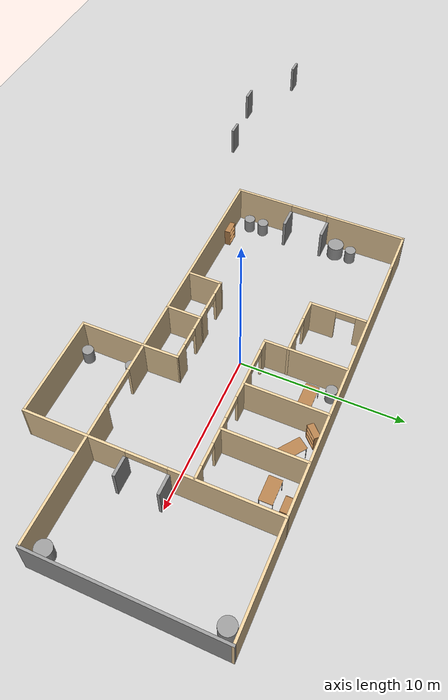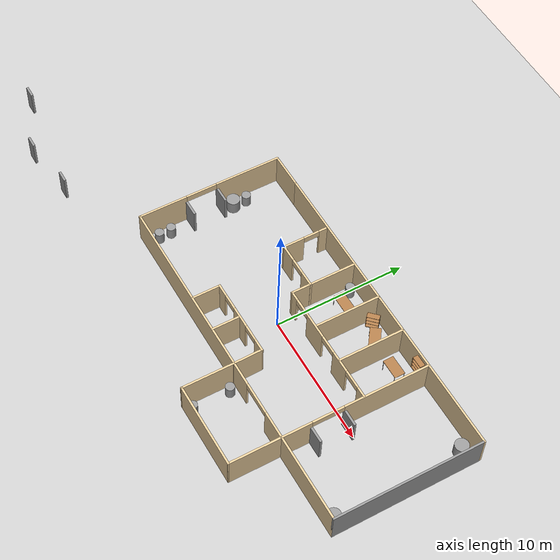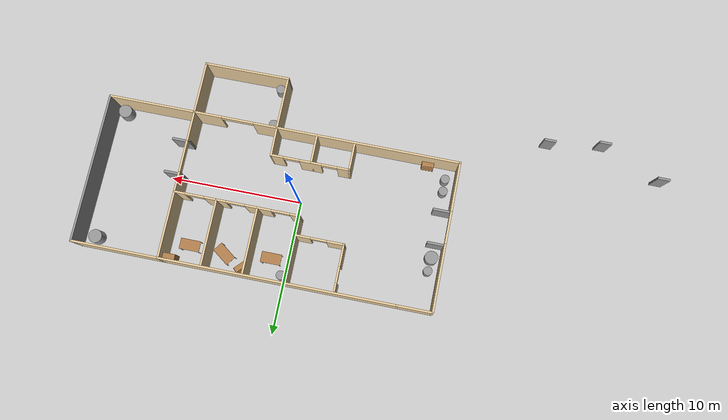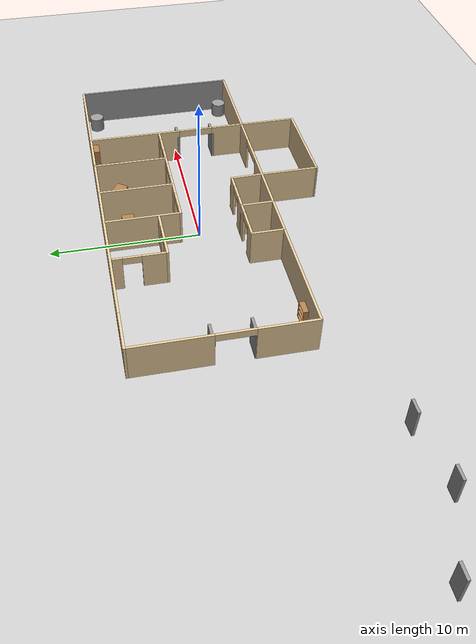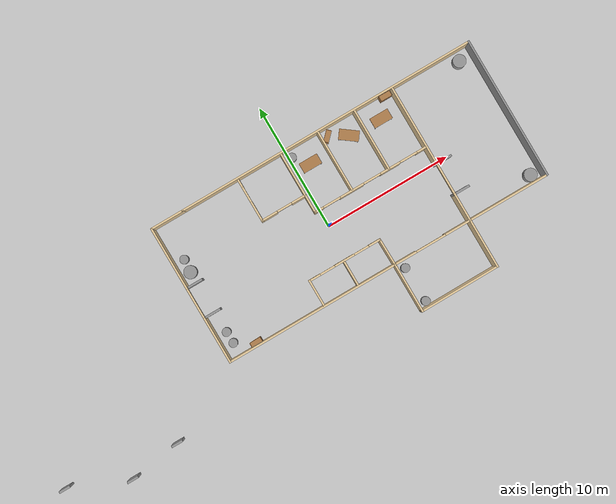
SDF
<sdf version="1.6">
 <world name="default">
  <light name="sun" type="directional">
   <pose>0 0 10 0 -0 0</pose>
   <diffuse>0.8 0.8 0.8 1</diffuse>
   <specular>0.2 0.2 0.2 1</specular>
   <attenuation>
    <range>1000</range>
    <constant>0.9</constant>
    <linear>0.01</linear>
    <quadratic>0.001</quadratic>
   </attenuation>
   <direction>-0.5 0.1 -0.9</direction>
  </light>
  <model name="ground_plane">
   <static>1</static>
   <link name="link">
    <collision name="collision">
     <geometry><plane><normal>0 0 1</normal><size>100 100</size></plane></geometry>
     <surface>
      <contact><collide_bitmask>65535</collide_bitmask></contact>
      <friction><ode><mu>100</mu><mu2>50</mu2></ode></friction>
     </surface>
    </collision>
    <visual name="visual">
     <cast_shadows>0</cast_shadows>
     <geometry><plane><normal>0 0 1</normal><size>100 100</size></plane></geometry>
     <material>
      <script><uri>file://media/materials/scripts/gazebo.material</uri><name>Gazebo/Grey</name></script>
     </material>
    </visual>
   </link>
  </model>
  <gravity>0 0 -9.8</gravity>
  <magnetic_field>6e-06 2.3e-05 -4.2e-05</magnetic_field>
  <atmosphere type="adiabatic"/>
  <physics name="default_physics" default="0" type="ode">
   <max_step_size>0.001</max_step_size>
   <real_time_factor>1</real_time_factor>
   <real_time_update_rate>1000</real_time_update_rate>
  </physics>
  <scene><ambient>0.4 0.4 0.4 1</ambient><background>0.7 0.7 0.7 1</background><shadows>1</shadows></scene>
  <audio><device>default</device></audio>
  <spherical_coordinates>
   <surface_model>EARTH_WGS84</surface_model>
   <latitude_deg>0</latitude_deg>
   <longitude_deg>0</longitude_deg>
   <elevation>0</elevation>
   <heading_deg>0</heading_deg>
  </spherical_coordinates>
  <model name="office-final">
   <pose>2.08602 -1.20157 0 0 -0 0</pose>
   <link name="Door_10">
    <collision name="Door_10_Collision">
     <geometry><box><size>1.35 0.17 2</size></box></geometry>
     <pose>0 0 1 0 -0 0</pose>
    </collision>
    <visual name="Door_10_Visual">
     <pose>0 0 1 0 -0 0</pose>
     <geometry><box><size>1.35 0.17 2</size></box></geometry>
     <material>
      <script><uri>file://media/materials/scripts/gazebo.material</uri><name>Gazebo/Grey</name></script>
     </material>
    </visual>
    <pose>7.39418 1.10816 0 0 -0 0</pose>
   </link>
   <link name="Door_11">
    <collision name="Door_11_Collision">
     <geometry><box><size>1.35 0.17 2</size></box></geometry>
     <pose>0 0 1 0 -0 0</pose>
    </collision>
    <visual name="Door_11_Visual">
     <pose>0 0 1 0 -0 0</pose>
     <geometry><box><size>1.35 0.17 2</size></box></geometry>
     <material>
      <script><uri>file://media/materials/scripts/gazebo.material</uri><name>Gazebo/Grey</name></script>
     </material>
    </visual>
    <pose>7.39418 -1.435 0 0 -0 0</pose>
   </link>
   <link name="Door_12">
    <collision name="Door_12_Collision">
     <geometry><box><size>1.35 0.17 2</size></box></geometry>
     <pose>0 0 1 0 -0 0</pose>
    </collision>
    <visual name="Door_12_Visual">
     <pose>0 0 1 0 -0 0</pose>
     <geometry><box><size>1.35 0.17 2</size></box></geometry>
     <material>
      <script><uri>file://media/materials/scripts/gazebo.material</uri><name>Gazebo/Grey</name></script>
     </material>
    </visual>
    <pose>-12.6196 2.54319 0 0 -0 0</pose>
   </link>
   <link name="Door_13">
    <collision name="Door_13_Collision">
     <geometry><box><size>1.35 0.17 2</size></box></geometry>
     <pose>0 0 1 0 -0 0</pose>
    </collision>
    <visual name="Door_13_Visual">
     <pose>0 0 1 0 -0 0</pose>
     <geometry><box><size>1.35 0.17 2</size></box></geometry>
     <material>
      <script><uri>file://media/materials/scripts/gazebo.material</uri><name>Gazebo/Grey</name></script>
     </material>
    </visual>
    <pose>-12.593 0.044941 0 0 -0 0</pose>
   </link>
   <link name="Door_16">
    <collision name="Door_16_Collision">
     <geometry><box><size>0.9 0.17 2</size></box></geometry>
     <pose>0 0 1 0 -0 0</pose>
    </collision>
    <visual name="Door_16_Visual">
     <pose>0 0 1 0 -0 0</pose>
     <geometry><box><size>0.9 0.17 2</size></box></geometry>
     <material>
      <script><uri>file://media/materials/scripts/gazebo.material</uri><name>Gazebo/Grey</name></script>
     </material>
    </visual>
    <pose>-23.6184 -7.36039 0 0 -0 0</pose>
   </link>
   <link name="Door_17">
    <collision name="Door_17_Collision">
     <geometry><box><size>0.9 0.17 2</size></box></geometry>
     <pose>0 0 1 0 -0 0</pose>
    </collision>
    <visual name="Door_17_Visual">
     <pose>0 0 1 0 -0 0</pose>
     <geometry><box><size>0.9 0.17 2</size></box></geometry>
     <material>
      <script><uri>file://media/materials/scripts/gazebo.material</uri><name>Gazebo/Grey</name></script>
     </material>
    </visual>
    <pose>-19.5486 -6.74859 0 0 -0 0</pose>
   </link>
   <link name="Door_7">
    <collision name="Door_7_Collision">
     <geometry><box><size>0.9 0.17 2</size></box></geometry>
     <pose>0 0 1 0 -0 0</pose>
    </collision>
    <visual name="Door_7_Visual">
     <pose>0 0 1 0 -0 0</pose>
     <geometry><box><size>0.9 0.17 2</size></box></geometry>
     <material>
      <script><uri>file://media/materials/scripts/gazebo.material</uri><name>Gazebo/Grey</name></script>
     </material>
    </visual>
    <pose>-28.2055 -5.4631 0 0 -0 0</pose>
   </link>
   <link name="Wall_0">
    <collision name="Wall_0_Collision">
     <geometry><box><size>11.25 0.15 2.5</size></box></geometry>
     <pose>0 0 1.25 0 -0 0</pose>
    </collision>
    <visual name="Wall_0_Visual">
     <pose>0 0 1.25 0 -0 0</pose>
     <geometry><box><size>11.25 0.15 2.5</size></box></geometry>
     <material>
      <script><uri>file://media/materials/scripts/gazebo.material</uri><name>Gazebo/Grey</name></script>
      <ambient>1 1 1 1</ambient>
     </material>
     <meta><layer>0</layer></meta>
    </visual>
    <pose>13.225 1.94023 0 0 -0 1.5708</pose>
   </link>
   <link name="Wall_1">
    <collision name="Wall_1_Collision">
     <geometry><box><size>24 0.15 2.5</size></box></geometry>
     <pose>0 0 1.25 0 -0 0</pose>
    </collision>
    <visual name="Wall_1_Visual">
     <pose>0 0 1.25 0 -0 0</pose>
     <geometry><box><size>24 0.15 2.5</size></box></geometry>
     <material>
      <script><uri>file://media/materials/scripts/gazebo.material</uri><name>Gazebo/Grey</name></script>
      <ambient>0.921569 0.807843 0.615686 1</ambient>
     </material>
     <meta><layer>0</layer></meta>
    </visual>
    <pose>1.3 7.49023 0 0 -0 3.14159</pose>
   </link>
   <link name="Wall_12">
    <collision name="Wall_12_Collision">
     <geometry><box><size>5 0.15 2.5</size></box></geometry>
     <pose>0 0 1.25 0 -0 0</pose>
    </collision>
    <visual name="Wall_12_Visual">
     <pose>0 0 1.25 0 -0 0</pose>
     <geometry><box><size>5 0.15 2.5</size></box></geometry>
     <material>
      <script><uri>file://media/materials/scripts/gazebo.material</uri><name>Gazebo/Grey</name></script>
      <ambient>0.921569 0.807843 0.615686 1</ambient>
     </material>
     <meta><layer>0</layer></meta>
    </visual>
    <pose>-2.48513 4.96387 0 0 -0 1.5708</pose>
   </link>
   <link name="Wall_14">
    <collision name="Wall_14_Collision">
     <geometry><box><size>2.25 0.15 2.5</size></box></geometry>
     <pose>0 0 1.25 0 -0 0</pose>
    </collision>
    <visual name="Wall_14_Visual">
     <pose>0 0 1.25 0 -0 0</pose>
     <geometry><box><size>2.25 0.15 2.5</size></box></geometry>
     <material>
      <script><uri>file://media/materials/scripts/gazebo.material</uri><name>Gazebo/Grey</name></script>
      <ambient>0.921569 0.807843 0.615686 1</ambient>
     </material>
     <meta><layer>0</layer></meta>
    </visual>
    <pose>-5.35061 -2.55476 0 0 -0 1.5708</pose>
   </link>
   <link name="Wall_15">
    <pose>-2.42561 -1.50476 0 0 -0 0</pose>
    <visual name="Wall_15_Visual_0">
     <pose>-2.51281 0 1.25 0 -0 0</pose>
     <geometry><box><size>0.974378 0.15 2.5</size></box></geometry>
     <material>
      <script><uri>file://media/materials/scripts/gazebo.material</uri><name>Gazebo/Grey</name></script>
      <ambient>0.921569 0.807843 0.615686 1</ambient>
     </material>
     <meta><layer>0</layer></meta>
    </visual>
    <collision name="Wall_15_Collision_0">
     <geometry><box><size>0.974378 0.15 2.5</size></box></geometry>
     <pose>-2.51281 0 1.25 0 -0 0</pose>
    </collision>
    <visual name="Wall_15_Visual_1">
     <pose>-0.009677 0 1.25 0 -0 0</pose>
     <geometry><box><size>1.63189 0.15 2.5</size></box></geometry>
     <material>
      <script><uri>file://media/materials/scripts/gazebo.material</uri><name>Gazebo/Grey</name></script>
      <ambient>0.921569 0.807843 0.615686 1</ambient>
     </material>
     <meta><layer>0</layer></meta>
    </visual>
    <collision name="Wall_15_Collision_1">
     <geometry><box><size>1.63189 0.15 2.5</size></box></geometry>
     <pose>-0.009677 0 1.25 0 -0 0</pose>
    </collision>
    <visual name="Wall_15_Visual_2">
     <pose>2.50313 0 1.25 0 -0 0</pose>
     <geometry><box><size>0.993732 0.15 2.5</size></box></geometry>
     <material>
      <script><uri>file://media/materials/scripts/gazebo.material</uri><name>Gazebo/Grey</name></script>
      <ambient>0.921569 0.807843 0.615686 1</ambient>
     </material>
     <meta><layer>0</layer></meta>
    </visual>
    <collision name="Wall_15_Collision_2">
     <geometry><box><size>0.993732 0.15 2.5</size></box></geometry>
     <pose>2.50313 0 1.25 0 -0 0</pose>
    </collision>
    <visual name="Wall_15_Visual_3">
     <pose>-1.42562 0 2.25 0 -0 0</pose>
     <geometry><box><size>1.2 0.15 0.5</size></box></geometry>
     <material>
      <script><uri>file://media/materials/scripts/gazebo.material</uri><name>Gazebo/Grey</name></script>
      <ambient>0.921569 0.807843 0.615686 1</ambient>
     </material>
     <meta><layer>0</layer></meta>
    </visual>
    <collision name="Wall_15_Collision_3">
     <geometry><box><size>1.2 0.15 0.5</size></box></geometry>
     <pose>-1.42562 0 2.25 0 -0 0</pose>
    </collision>
    <visual name="Wall_15_Visual_4">
     <pose>1.40627 0 2.25 0 -0 0</pose>
     <geometry><box><size>1.2 0.15 0.5</size></box></geometry>
     <material>
      <script><uri>file://media/materials/scripts/gazebo.material</uri><name>Gazebo/Grey</name></script>
      <ambient>0.921569 0.807843 0.615686 1</ambient>
     </material>
     <meta><layer>0</layer></meta>
    </visual>
    <collision name="Wall_15_Collision_4">
     <geometry><box><size>1.2 0.15 0.5</size></box></geometry>
     <pose>1.40627 0 2.25 0 -0 0</pose>
    </collision>
   </link>
   <link name="Wall_16">
    <collision name="Wall_16_Collision">
     <geometry><box><size>2.2954 0.15 2.5</size></box></geometry>
     <pose>0 0 1.25 0 -0 0</pose>
    </collision>
    <visual name="Wall_16_Visual">
     <pose>0 0 1.25 0 -0 0</pose>
     <geometry><box><size>2.2954 0.15 2.5</size></box></geometry>
     <material>
      <script><uri>file://media/materials/scripts/gazebo.material</uri><name>Gazebo/Grey</name></script>
      <ambient>0.921569 0.807843 0.615686 1</ambient>
     </material>
     <meta><layer>0</layer></meta>
    </visual>
    <pose>0.516727 -2.57732 0 0 -0 -1.55463</pose>
   </link>
   <link name="Wall_19">
    <collision name="Wall_19_Collision">
     <geometry><box><size>2.25 0.15 2.5</size></box></geometry>
     <pose>0 0 1.25 0 -0 0</pose>
    </collision>
    <visual name="Wall_19_Visual">
     <pose>0 0 1.25 0 -0 0</pose>
     <geometry><box><size>2.25 0.15 2.5</size></box></geometry>
     <material>
      <script><uri>file://media/materials/scripts/gazebo.material</uri><name>Gazebo/Grey</name></script>
      <ambient>0.921569 0.807843 0.615686 1</ambient>
     </material>
     <meta><layer>0</layer></meta>
    </visual>
    <pose>-2.50061 -2.55476 0 0 -0 -1.5708</pose>
   </link>
   <link name="Wall_2">
    <collision name="Wall_2_Collision">
     <geometry><box><size>2.75 0.15 2.5</size></box></geometry>
     <pose>0 0 1.25 0 -0 0</pose>
    </collision>
    <visual name="Wall_2_Visual">
     <pose>0 0 1.25 0 -0 0</pose>
     <geometry><box><size>2.75 0.15 2.5</size></box></geometry>
     <material>
      <script><uri>file://media/materials/scripts/gazebo.material</uri><name>Gazebo/Grey</name></script>
      <ambient>0.921569 0.807843 0.615686 1</ambient>
     </material>
     <meta><layer>0</layer></meta>
    </visual>
    <pose>-11.925 7.49023 0 0 -0 3.14159</pose>
   </link>
   <link name="Wall_21">
    <collision name="Wall_21_Collision">
     <geometry><box><size>5 0.15 2.5</size></box></geometry>
     <pose>0 0 1.25 0 -0 0</pose>
    </collision>
    <visual name="Wall_21_Visual">
     <pose>0 0 1.25 0 -0 0</pose>
     <geometry><box><size>5 0.15 2.5</size></box></geometry>
     <material>
      <script><uri>file://media/materials/scripts/gazebo.material</uri><name>Gazebo/Grey</name></script>
      <ambient>0.921569 0.807843 0.615686 1</ambient>
     </material>
     <meta><layer>0</layer></meta>
    </visual>
    <pose>0.61017 5.06244 0 0 -0 -1.5708</pose>
   </link>
   <link name="Wall_24">
    <collision name="Wall_24_Collision">
     <geometry><box><size>5 0.15 2.5</size></box></geometry>
     <pose>0 0 1.25 0 -0 0</pose>
    </collision>
    <visual name="Wall_24_Visual">
     <pose>0 0 1.25 0 -0 0</pose>
     <geometry><box><size>5 0.15 2.5</size></box></geometry>
     <material>
      <script><uri>file://media/materials/scripts/gazebo.material</uri><name>Gazebo/Grey</name></script>
      <ambient>0.921569 0.807843 0.615686 1</ambient>
     </material>
     <meta><layer>0</layer></meta>
    </visual>
    <pose>3.65272 5.02706 0 0 -0 -1.5708</pose>
   </link>
   <link name="Wall_26">
    <collision name="Wall_26_Collision">
     <geometry><box><size>3.99038 0.15 2.5</size></box></geometry>
     <pose>0 0 1.25 0 -0 0</pose>
    </collision>
    <visual name="Wall_26_Visual">
     <pose>0 0 1.25 0 -0 0</pose>
     <geometry><box><size>3.99038 0.15 2.5</size></box></geometry>
     <material>
      <script><uri>file://media/materials/scripts/gazebo.material</uri><name>Gazebo/Grey</name></script>
      <ambient>0.921569 0.807843 0.615686 1</ambient>
     </material>
     <meta><layer>0</layer></meta>
    </visual>
    <pose>0.534066 -5.56987 0 0 -0 -1.5708</pose>
   </link>
   <link name="Wall_3">
    <pose>-13.225 1.94023 0 0 -0 -1.5708</pose>
    <visual name="Wall_3_Visual_0">
     <pose>-3.07666 0 1.25 0 -0 0</pose>
     <geometry><box><size>5.09669 0.15 2.5</size></box></geometry>
     <material>
      <script><uri>file://media/materials/scripts/gazebo.material</uri><name>Gazebo/Grey</name></script>
      <ambient>0.921569 0.807843 0.615686 1</ambient>
     </material>
     <meta><layer>0</layer></meta>
    </visual>
    <collision name="Wall_3_Collision_0">
     <geometry><box><size>5.09669 0.15 2.5</size></box></geometry>
     <pose>-3.07666 0 1.25 0 -0 0</pose>
    </collision>
    <visual name="Wall_3_Visual_1">
     <pose>3.74834 0 1.25 0 -0 0</pose>
     <geometry><box><size>3.75331 0.15 2.5</size></box></geometry>
     <material>
      <script><uri>file://media/materials/scripts/gazebo.material</uri><name>Gazebo/Grey</name></script>
      <ambient>0.921569 0.807843 0.615686 1</ambient>
     </material>
     <meta><layer>0</layer></meta>
    </visual>
    <collision name="Wall_3_Collision_1">
     <geometry><box><size>3.75331 0.15 2.5</size></box></geometry>
     <pose>3.74834 0 1.25 0 -0 0</pose>
    </collision>
    <visual name="Wall_3_Visual_2">
     <pose>0.671688 0 2.25 0 -0 0</pose>
     <geometry><box><size>2.4 0.15 0.5</size></box></geometry>
     <material>
      <script><uri>file://media/materials/scripts/gazebo.material</uri><name>Gazebo/Grey</name></script>
      <ambient>0.921569 0.807843 0.615686 1</ambient>
     </material>
     <meta><layer>0</layer></meta>
    </visual>
    <collision name="Wall_3_Collision_2">
     <geometry><box><size>2.4 0.15 0.5</size></box></geometry>
     <pose>0.671688 0 2.25 0 -0 0</pose>
    </collision>
   </link>
   <link name="Wall_35">
    <collision name="Wall_35_Collision">
     <geometry><box><size>4 0.15 2.5</size></box></geometry>
     <pose>0 0 1.25 0 -0 0</pose>
    </collision>
    <visual name="Wall_35_Visual">
     <pose>0 0 1.25 0 -0 0</pose>
     <geometry><box><size>4 0.15 2.5</size></box></geometry>
     <material>
      <script><uri>file://media/materials/scripts/gazebo.material</uri><name>Gazebo/Grey</name></script>
      <ambient>0.921569 0.807843 0.615686 1</ambient>
     </material>
     <meta><layer>0</layer></meta>
    </visual>
    <pose>6.80105 -5.53477 0 0 -0 -1.5708</pose>
   </link>
   <link name="Wall_37">
    <collision name="Wall_37_Collision">
     <geometry><box><size>6.41706 0.15 2.5</size></box></geometry>
     <pose>0 0 1.25 0 -0 0</pose>
    </collision>
    <visual name="Wall_37_Visual">
     <pose>0 0 1.25 0 -0 0</pose>
     <geometry><box><size>6.41706 0.15 2.5</size></box></geometry>
     <material>
      <script><uri>file://media/materials/scripts/gazebo.material</uri><name>Gazebo/Grey</name></script>
      <ambient>0.921569 0.807843 0.615686 1</ambient>
     </material>
     <meta><layer>0</layer></meta>
    </visual>
    <pose>3.66756 -7.47482 0 0 -0 0.004804</pose>
   </link>
   <link name="Wall_39">
    <pose>-4.27574 3.96305 0 0 -0 3.14159</pose>
    <visual name="Wall_39_Visual_0">
     <pose>-1.26771 0 1.25 0 -0 0</pose>
     <geometry><box><size>1.21459 0.15 2.5</size></box></geometry>
     <material>
      <script><uri>file://media/materials/scripts/gazebo.material</uri><name>Gazebo/Grey</name></script>
      <ambient>0.921569 0.807843 0.615686 1</ambient>
     </material>
     <meta><layer>0</layer></meta>
    </visual>
    <collision name="Wall_39_Collision_0">
     <geometry><box><size>1.21459 0.15 2.5</size></box></geometry>
     <pose>-1.26771 0 1.25 0 -0 0</pose>
    </collision>
    <visual name="Wall_39_Visual_1">
     <pose>1.2073 0 1.25 0 -0 0</pose>
     <geometry><box><size>1.33541 0.15 2.5</size></box></geometry>
     <material>
      <script><uri>file://media/materials/scripts/gazebo.material</uri><name>Gazebo/Grey</name></script>
      <ambient>0.921569 0.807843 0.615686 1</ambient>
     </material>
     <meta><layer>0</layer></meta>
    </visual>
    <collision name="Wall_39_Collision_1">
     <geometry><box><size>1.33541 0.15 2.5</size></box></geometry>
     <pose>1.2073 0 1.25 0 -0 0</pose>
    </collision>
    <visual name="Wall_39_Visual_2">
     <pose>-0.06041 0 2.25 0 -0 0</pose>
     <geometry><box><size>1.2 0.15 0.5</size></box></geometry>
     <material>
      <script><uri>file://media/materials/scripts/gazebo.material</uri><name>Gazebo/Grey</name></script>
      <ambient>0.921569 0.807843 0.615686 1</ambient>
     </material>
     <meta><layer>0</layer></meta>
    </visual>
    <collision name="Wall_39_Collision_2">
     <geometry><box><size>1.2 0.15 0.5</size></box></geometry>
     <pose>-0.06041 0 2.25 0 -0 0</pose>
    </collision>
   </link>
   <link name="Wall_4">
    <pose>-0 -3.60977 0 0 -0 0</pose>
    <visual name="Wall_4_Visual_0">
     <pose>-5.47979 0 1.25 0 -0 0</pose>
     <geometry><box><size>15.6404 0.15 2.5</size></box></geometry>
     <material>
      <script><uri>file://media/materials/scripts/gazebo.material</uri><name>Gazebo/Grey</name></script>
      <ambient>0.921569 0.807843 0.615686 1</ambient>
     </material>
     <meta><layer>0</layer></meta>
    </visual>
    <collision name="Wall_4_Collision_0">
     <geometry><box><size>15.6404 0.15 2.5</size></box></geometry>
     <pose>-5.47979 0 1.25 0 -0 0</pose>
    </collision>
    <visual name="Wall_4_Visual_1">
     <pose>9.02021 0 1.25 0 -0 0</pose>
     <geometry><box><size>8.55959 0.15 2.5</size></box></geometry>
     <material>
      <script><uri>file://media/materials/scripts/gazebo.material</uri><name>Gazebo/Grey</name></script>
      <ambient>0.921569 0.807843 0.615686 1</ambient>
     </material>
     <meta><layer>0</layer></meta>
    </visual>
    <collision name="Wall_4_Collision_1">
     <geometry><box><size>8.55959 0.15 2.5</size></box></geometry>
     <pose>9.02021 0 1.25 0 -0 0</pose>
    </collision>
    <visual name="Wall_4_Visual_2">
     <pose>3.54041 0 2.25 0 -0 0</pose>
     <geometry><box><size>2.4 0.15 0.5</size></box></geometry>
     <material>
      <script><uri>file://media/materials/scripts/gazebo.material</uri><name>Gazebo/Grey</name></script>
      <ambient>0.921569 0.807843 0.615686 1</ambient>
     </material>
     <meta><layer>0</layer></meta>
    </visual>
    <collision name="Wall_4_Collision_2">
     <geometry><box><size>2.4 0.15 0.5</size></box></geometry>
     <pose>3.54041 0 2.25 0 -0 0</pose>
    </collision>
   </link>
   <link name="Wall_40">
    <pose>-6.07574 5.63805 0 0 -0 1.5708</pose>
    <visual name="Wall_40_Visual_0">
     <pose>-0.9202 0 1.25 0 -0 0</pose>
     <geometry><box><size>1.6596 0.15 2.5</size></box></geometry>
     <material>
      <script><uri>file://media/materials/scripts/gazebo.material</uri><name>Gazebo/Grey</name></script>
      <ambient>0.921569 0.807843 0.615686 1</ambient>
     </material>
     <meta><layer>0</layer></meta>
    </visual>
    <collision name="Wall_40_Collision_0">
     <geometry><box><size>1.6596 0.15 2.5</size></box></geometry>
     <pose>-0.9202 0 1.25 0 -0 0</pose>
    </collision>
    <visual name="Wall_40_Visual_1">
     <pose>1.4298 0 1.25 0 -0 0</pose>
     <geometry><box><size>0.640399 0.15 2.5</size></box></geometry>
     <material>
      <script><uri>file://media/materials/scripts/gazebo.material</uri><name>Gazebo/Grey</name></script>
      <ambient>0.921569 0.807843 0.615686 1</ambient>
     </material>
     <meta><layer>0</layer></meta>
    </visual>
    <collision name="Wall_40_Collision_1">
     <geometry><box><size>0.640399 0.15 2.5</size></box></geometry>
     <pose>1.4298 0 1.25 0 -0 0</pose>
    </collision>
    <visual name="Wall_40_Visual_2">
     <pose>0.509601 0 2.25 0 -0 0</pose>
     <geometry><box><size>1.2 0.15 0.5</size></box></geometry>
     <material>
      <script><uri>file://media/materials/scripts/gazebo.material</uri><name>Gazebo/Grey</name></script>
      <ambient>0.921569 0.807843 0.615686 1</ambient>
     </material>
     <meta><layer>0</layer></meta>
    </visual>
    <collision name="Wall_40_Collision_2">
     <geometry><box><size>1.2 0.15 0.5</size></box></geometry>
     <pose>0.509601 0 2.25 0 -0 0</pose>
    </collision>
   </link>
   <link name="Wall_5">
    <collision name="Wall_5_Collision">
     <geometry><box><size>11.25 0.15 2.5</size></box></geometry>
     <pose>0 0 1.25 0 -0 0</pose>
    </collision>
    <visual name="Wall_5_Visual">
     <pose>0 0 1.25 0 -0 0</pose>
     <geometry><box><size>11.25 0.15 2.5</size></box></geometry>
     <material>
      <script><uri>file://media/materials/scripts/gazebo.material</uri><name>Gazebo/Grey</name></script>
      <ambient>0.921569 0.807843 0.615686 1</ambient>
     </material>
     <meta><layer>0</layer></meta>
    </visual>
    <pose>13.225 1.94023 0 0 -0 1.5708</pose>
   </link>
   <link name="Wall_7">
    <pose>6.80105 1.94023 0 0 -0 1.5708</pose>
    <visual name="Wall_7_Visual_0">
     <pose>-4.46433 0 1.25 0 -0 0</pose>
     <geometry><box><size>2.32135 0.15 2.5</size></box></geometry>
     <material>
      <script><uri>file://media/materials/scripts/gazebo.material</uri><name>Gazebo/Grey</name></script>
      <ambient>0.921569 0.807843 0.615686 1</ambient>
     </material>
     <meta><layer>0</layer></meta>
    </visual>
    <collision name="Wall_7_Collision_0">
     <geometry><box><size>2.32135 0.15 2.5</size></box></geometry>
     <pose>-4.46433 0 1.25 0 -0 0</pose>
    </collision>
    <visual name="Wall_7_Visual_1">
     <pose>2.36067 0 1.25 0 -0 0</pose>
     <geometry><box><size>6.52865 0.15 2.5</size></box></geometry>
     <material>
      <script><uri>file://media/materials/scripts/gazebo.material</uri><name>Gazebo/Grey</name></script>
      <ambient>0.921569 0.807843 0.615686 1</ambient>
     </material>
     <meta><layer>0</layer></meta>
    </visual>
    <collision name="Wall_7_Collision_1">
     <geometry><box><size>6.52865 0.15 2.5</size></box></geometry>
     <pose>2.36067 0 1.25 0 -0 0</pose>
    </collision>
    <visual name="Wall_7_Visual_2">
     <pose>-2.10365 0 2.25 0 -0 0</pose>
     <geometry><box><size>2.4 0.15 0.5</size></box></geometry>
     <material>
      <script><uri>file://media/materials/scripts/gazebo.material</uri><name>Gazebo/Grey</name></script>
      <ambient>0.921569 0.807843 0.615686 1</ambient>
     </material>
     <meta><layer>0</layer></meta>
    </visual>
    <collision name="Wall_7_Collision_2">
     <geometry><box><size>2.4 0.15 0.5</size></box></geometry>
     <pose>-2.10365 0 2.25 0 -0 0</pose>
    </collision>
   </link>
   <link name="Wall_9">
    <pose>2.12737 2.53887 0 0 -0 3.14159</pose>
    <visual name="Wall_9_Visual_0">
     <pose>-4.27593 0 1.25 0 -0 0</pose>
     <geometry><box><size>0.823145 0.15 2.5</size></box></geometry>
     <material>
      <script><uri>file://media/materials/scripts/gazebo.material</uri><name>Gazebo/Grey</name></script>
      <ambient>0.921569 0.807843 0.615686 1</ambient>
     </material>
     <meta><layer>0</layer></meta>
    </visual>
    <collision name="Wall_9_Collision_0">
     <geometry><box><size>0.823145 0.15 2.5</size></box></geometry>
     <pose>-4.27593 0 1.25 0 -0 0</pose>
    </collision>
    <visual name="Wall_9_Visual_1">
     <pose>-1.64727 0 1.25 0 -0 0</pose>
     <geometry><box><size>1.63417 0.15 2.5</size></box></geometry>
     <material>
      <script><uri>file://media/materials/scripts/gazebo.material</uri><name>Gazebo/Grey</name></script>
      <ambient>0.921569 0.807843 0.615686 1</ambient>
     </material>
     <meta><layer>0</layer></meta>
    </visual>
    <collision name="Wall_9_Collision_1">
     <geometry><box><size>1.63417 0.15 2.5</size></box></geometry>
     <pose>-1.64727 0 1.25 0 -0 0</pose>
    </collision>
    <visual name="Wall_9_Visual_2">
     <pose>1.54876 0 1.25 0 -0 0</pose>
     <geometry><box><size>1.9579 0.15 2.5</size></box></geometry>
     <material>
      <script><uri>file://media/materials/scripts/gazebo.material</uri><name>Gazebo/Grey</name></script>
      <ambient>0.921569 0.807843 0.615686 1</ambient>
     </material>
     <meta><layer>0</layer></meta>
    </visual>
    <collision name="Wall_9_Collision_2">
     <geometry><box><size>1.9579 0.15 2.5</size></box></geometry>
     <pose>1.54876 0 1.25 0 -0 0</pose>
    </collision>
    <visual name="Wall_9_Visual_3">
     <pose>4.30761 0 1.25 0 -0 0</pose>
     <geometry><box><size>0.759788 0.15 2.5</size></box></geometry>
     <material>
      <script><uri>file://media/materials/scripts/gazebo.material</uri><name>Gazebo/Grey</name></script>
      <ambient>0.921569 0.807843 0.615686 1</ambient>
     </material>
     <meta><layer>0</layer></meta>
    </visual>
    <collision name="Wall_9_Collision_3">
     <geometry><box><size>0.759788 0.15 2.5</size></box></geometry>
     <pose>4.30761 0 1.25 0 -0 0</pose>
    </collision>
    <visual name="Wall_9_Visual_4">
     <pose>-3.16436 0 2.25 0 -0 0</pose>
     <geometry><box><size>1.4 0.15 0.5</size></box></geometry>
     <material>
      <script><uri>file://media/materials/scripts/gazebo.material</uri><name>Gazebo/Grey</name></script>
      <ambient>0.921569 0.807843 0.615686 1</ambient>
     </material>
     <meta><layer>0</layer></meta>
    </visual>
    <collision name="Wall_9_Collision_4">
     <geometry><box><size>1.4 0.15 0.5</size></box></geometry>
     <pose>-3.16436 0 2.25 0 -0 0</pose>
    </collision>
    <visual name="Wall_9_Visual_5">
     <pose>-0.130187 0 2.25 0 -0 0</pose>
     <geometry><box><size>1.4 0.15 0.5</size></box></geometry>
     <material>
      <script><uri>file://media/materials/scripts/gazebo.material</uri><name>Gazebo/Grey</name></script>
      <ambient>0.921569 0.807843 0.615686 1</ambient>
     </material>
     <meta><layer>0</layer></meta>
    </visual>
    <collision name="Wall_9_Collision_5">
     <geometry><box><size>1.4 0.15 0.5</size></box></geometry>
     <pose>-0.130187 0 2.25 0 -0 0</pose>
    </collision>
    <visual name="Wall_9_Visual_6">
     <pose>3.22771 0 2.25 0 -0 0</pose>
     <geometry><box><size>1.4 0.15 0.5</size></box></geometry>
     <material>
      <script><uri>file://media/materials/scripts/gazebo.material</uri><name>Gazebo/Grey</name></script>
      <ambient>0.921569 0.807843 0.615686 1</ambient>
     </material>
     <meta><layer>0</layer></meta>
    </visual>
    <collision name="Wall_9_Collision_6">
     <geometry><box><size>1.4 0.15 0.5</size></box></geometry>
     <pose>3.22771 0 2.25 0 -0 0</pose>
    </collision>
   </link>
   <static>1</static>
  </model>
  <model name="bookshelf">
   <static>1</static>
   <link name="link">
    <inertial><mass>1</mass></inertial>
    <collision name="back">
     <pose>0 0.005 0.6 0 -0 0</pose>
     <geometry><box><size>0.9 0.01 1.2</size></box></geometry>
    </collision>
    <visual name="visual1">
     <pose>0 0.005 0.6 0 -0 0</pose>
     <geometry><box><size>0.9 0.01 1.2</size></box></geometry>
     <material>
      <script><uri>file://media/materials/scripts/gazebo.material</uri><name>Gazebo/Wood</name></script>
     </material>
    </visual>
    <collision name="left_side">
     <pose>0.45 -0.195 0.6 0 -0 0</pose>
     <geometry><box><size>0.02 0.4 1.2</size></box></geometry>
    </collision>
    <visual name="visual2">
     <pose>0.45 -0.195 0.6 0 -0 0</pose>
     <geometry><box><size>0.02 0.4 1.2</size></box></geometry>
     <material>
      <script><uri>file://media/materials/scripts/gazebo.material</uri><name>Gazebo/Wood</name></script>
     </material>
    </visual>
    <collision name="right_side">
     <pose>-0.45 -0.195 0.6 0 -0 0</pose>
     <geometry><box><size>0.02 0.4 1.2</size></box></geometry>
    </collision>
    <visual name="visual3">
     <pose>-0.45 -0.195 0.6 0 -0 0</pose>
     <geometry><box><size>0.02 0.4 1.2</size></box></geometry>
     <material>
      <script><uri>file://media/materials/scripts/gazebo.material</uri><name>Gazebo/Wood</name></script>
     </material>
    </visual>
    <collision name="bottom">
     <pose>0 -0.195 0.03 0 -0 0</pose>
     <geometry><box><size>0.88 0.4 0.06</size></box></geometry>
    </collision>
    <visual name="visual4">
     <pose>0 -0.195 0.03 0 -0 0</pose>
     <geometry><box><size>0.88 0.4 0.06</size></box></geometry>
     <material>
      <script><uri>file://media/materials/scripts/gazebo.material</uri><name>Gazebo/Wood</name></script>
     </material>
    </visual>
    <collision name="top">
     <pose>0 -0.195 1.19 0 -0 0</pose>
     <geometry><box><size>0.88 0.4 0.02</size></box></geometry>
    </collision>
    <visual name="visual5">
     <pose>0 -0.195 1.19 0 -0 0</pose>
     <geometry><box><size>0.88 0.4 0.02</size></box></geometry>
     <material>
      <script><uri>file://media/materials/scripts/gazebo.material</uri><name>Gazebo/Wood</name></script>
     </material>
    </visual>
    <collision name="low_shelf">
     <pose>0 -0.195 0.43 0 -0 0</pose>
     <geometry><box><size>0.88 0.4 0.02</size></box></geometry>
    </collision>
    <visual name="visual6">
     <pose>0 -0.195 0.43 0 -0 0</pose>
     <geometry><box><size>0.88 0.4 0.02</size></box></geometry>
     <material>
      <script><uri>file://media/materials/scripts/gazebo.material</uri><name>Gazebo/Wood</name></script>
     </material>
    </visual>
    <collision name="high_shelf">
     <pose>0 -0.195 0.8 0 -0 0</pose>
     <geometry><box><size>0.88 0.4 0.02</size></box></geometry>
    </collision>
    <visual name="visual7">
     <pose>0 -0.195 0.8 0 -0 0</pose>
     <geometry><box><size>0.88 0.4 0.02</size></box></geometry>
     <material>
      <script><uri>file://media/materials/scripts/gazebo.material</uri><name>Gazebo/Wood</name></script>
     </material>
    </visual>
   </link>
   <pose>8.20219 6.18787 1.03065 0 -0 0</pose>
  </model>
  <model name="bookshelf_0">
   <static>1</static>
   <link name="link">
    <inertial><mass>1</mass></inertial>
    <collision name="back">
     <pose>0 0.005 0.6 0 -0 0</pose>
     <geometry><box><size>0.9 0.01 1.2</size></box></geometry>
    </collision>
    <visual name="visual1">
     <pose>0 0.005 0.6 0 -0 0</pose>
     <geometry><box><size>0.9 0.01 1.2</size></box></geometry>
     <material>
      <script><uri>file://media/materials/scripts/gazebo.material</uri><name>Gazebo/Wood</name></script>
     </material>
    </visual>
    <collision name="left_side">
     <pose>0.45 -0.195 0.6 0 -0 0</pose>
     <geometry><box><size>0.02 0.4 1.2</size></box></geometry>
    </collision>
    <visual name="visual2">
     <pose>0.45 -0.195 0.6 0 -0 0</pose>
     <geometry><box><size>0.02 0.4 1.2</size></box></geometry>
     <material>
      <script><uri>file://media/materials/scripts/gazebo.material</uri><name>Gazebo/Wood</name></script>
     </material>
    </visual>
    <collision name="right_side">
     <pose>-0.45 -0.195 0.6 0 -0 0</pose>
     <geometry><box><size>0.02 0.4 1.2</size></box></geometry>
    </collision>
    <visual name="visual3">
     <pose>-0.45 -0.195 0.6 0 -0 0</pose>
     <geometry><box><size>0.02 0.4 1.2</size></box></geometry>
     <material>
      <script><uri>file://media/materials/scripts/gazebo.material</uri><name>Gazebo/Wood</name></script>
     </material>
    </visual>
    <collision name="bottom">
     <pose>0 -0.195 0.03 0 -0 0</pose>
     <geometry><box><size>0.88 0.4 0.06</size></box></geometry>
    </collision>
    <visual name="visual4">
     <pose>0 -0.195 0.03 0 -0 0</pose>
     <geometry><box><size>0.88 0.4 0.06</size></box></geometry>
     <material>
      <script><uri>file://media/materials/scripts/gazebo.material</uri><name>Gazebo/Wood</name></script>
     </material>
    </visual>
    <collision name="top">
     <pose>0 -0.195 1.19 0 -0 0</pose>
     <geometry><box><size>0.88 0.4 0.02</size></box></geometry>
    </collision>
    <visual name="visual5">
     <pose>0 -0.195 1.19 0 -0 0</pose>
     <geometry><box><size>0.88 0.4 0.02</size></box></geometry>
     <material>
      <script><uri>file://media/materials/scripts/gazebo.material</uri><name>Gazebo/Wood</name></script>
     </material>
    </visual>
    <collision name="low_shelf">
     <pose>0 -0.195 0.43 0 -0 0</pose>
     <geometry><box><size>0.88 0.4 0.02</size></box></geometry>
    </collision>
    <visual name="visual6">
     <pose>0 -0.195 0.43 0 -0 0</pose>
     <geometry><box><size>0.88 0.4 0.02</size></box></geometry>
     <material>
      <script><uri>file://media/materials/scripts/gazebo.material</uri><name>Gazebo/Wood</name></script>
     </material>
    </visual>
    <collision name="high_shelf">
     <pose>0 -0.195 0.8 0 -0 0</pose>
     <geometry><box><size>0.88 0.4 0.02</size></box></geometry>
    </collision>
    <visual name="visual7">
     <pose>0 -0.195 0.8 0 -0 0</pose>
     <geometry><box><size>0.88 0.4 0.02</size></box></geometry>
     <material>
      <script><uri>file://media/materials/scripts/gazebo.material</uri><name>Gazebo/Wood</name></script>
     </material>
    </visual>
   </link>
   <pose>3.06528 5.8186 0 0 -0 0.790449</pose>
  </model>
  <model name="table">
   <static>1</static>
   <link name="link">
    <collision name="surface">
     <pose>0 0 1 0 -0 0</pose>
     <geometry><box><size>1.5 0.8 0.03</size></box></geometry>
     <surface><friction><ode><mu>0.6</mu><mu2>0.6</mu2></ode></friction></surface>
    </collision>
    <visual name="visual1">
     <pose>0 0 1 0 -0 0</pose>
     <geometry><box><size>1.5 0.8 0.03</size></box></geometry>
     <material>
      <script><uri>file://media/materials/scripts/gazebo.material</uri><name>Gazebo/Wood</name></script>
     </material>
    </visual>
    <collision name="front_left_leg">
     <pose>0.68 0.38 0.5 0 -0 0</pose>
     <geometry><cylinder><radius>0.02</radius><length>1</length></cylinder></geometry>
    </collision>
    <visual name="front_left_leg">
     <pose>0.68 0.38 0.5 0 -0 0</pose>
     <geometry><cylinder><radius>0.02</radius><length>1</length></cylinder></geometry>
     <material>
      <script><uri>file://media/materials/scripts/gazebo.material</uri><name>Gazebo/Grey</name></script>
     </material>
    </visual>
    <collision name="front_right_leg">
     <pose>0.68 -0.38 0.5 0 -0 0</pose>
     <geometry><cylinder><radius>0.02</radius><length>1</length></cylinder></geometry>
    </collision>
    <visual name="front_right_leg">
     <pose>0.68 -0.38 0.5 0 -0 0</pose>
     <geometry><cylinder><radius>0.02</radius><length>1</length></cylinder></geometry>
     <material>
      <script><uri>file://media/materials/scripts/gazebo.material</uri><name>Gazebo/Grey</name></script>
     </material>
    </visual>
    <collision name="back_right_leg">
     <pose>-0.68 -0.38 0.5 0 -0 0</pose>
     <geometry><cylinder><radius>0.02</radius><length>1</length></cylinder></geometry>
    </collision>
    <visual name="back_right_leg">
     <pose>-0.68 -0.38 0.5 0 -0 0</pose>
     <geometry><cylinder><radius>0.02</radius><length>1</length></cylinder></geometry>
     <material>
      <script><uri>file://media/materials/scripts/gazebo.material</uri><name>Gazebo/Grey</name></script>
     </material>
    </visual>
    <collision name="back_left_leg">
     <pose>-0.68 0.38 0.5 0 -0 0</pose>
     <geometry><cylinder><radius>0.02</radius><length>1</length></cylinder></geometry>
    </collision>
    <visual name="back_left_leg">
     <pose>-0.68 0.38 0.5 0 -0 0</pose>
     <geometry><cylinder><radius>0.02</radius><length>1</length></cylinder></geometry>
     <material>
      <script><uri>file://media/materials/scripts/gazebo.material</uri><name>Gazebo/Grey</name></script>
     </material>
    </visual>
   </link>
   <pose>7.22002 4.80872 0 0 -0 0</pose>
  </model>
  <model name="table_0">
   <static>1</static>
   <link name="link">
    <collision name="surface">
     <pose>0 0 1 0 -0 0</pose>
     <geometry><box><size>1.5 0.8 0.03</size></box></geometry>
     <surface><friction><ode><mu>0.6</mu><mu2>0.6</mu2></ode></friction></surface>
    </collision>
    <visual name="visual1">
     <pose>0 0 1 0 -0 0</pose>
     <geometry><box><size>1.5 0.8 0.03</size></box></geometry>
     <material>
      <script><uri>file://media/materials/scripts/gazebo.material</uri><name>Gazebo/Wood</name></script>
     </material>
    </visual>
    <collision name="front_left_leg">
     <pose>0.68 0.38 0.5 0 -0 0</pose>
     <geometry><cylinder><radius>0.02</radius><length>1</length></cylinder></geometry>
    </collision>
    <visual name="front_left_leg">
     <pose>0.68 0.38 0.5 0 -0 0</pose>
     <geometry><cylinder><radius>0.02</radius><length>1</length></cylinder></geometry>
     <material>
      <script><uri>file://media/materials/scripts/gazebo.material</uri><name>Gazebo/Grey</name></script>
     </material>
    </visual>
    <collision name="front_right_leg">
     <pose>0.68 -0.38 0.5 0 -0 0</pose>
     <geometry><cylinder><radius>0.02</radius><length>1</length></cylinder></geometry>
    </collision>
    <visual name="front_right_leg">
     <pose>0.68 -0.38 0.5 0 -0 0</pose>
     <geometry><cylinder><radius>0.02</radius><length>1</length></cylinder></geometry>
     <material>
      <script><uri>file://media/materials/scripts/gazebo.material</uri><name>Gazebo/Grey</name></script>
     </material>
    </visual>
    <collision name="back_right_leg">
     <pose>-0.68 -0.38 0.5 0 -0 0</pose>
     <geometry><cylinder><radius>0.02</radius><length>1</length></cylinder></geometry>
    </collision>
    <visual name="back_right_leg">
     <pose>-0.68 -0.38 0.5 0 -0 0</pose>
     <geometry><cylinder><radius>0.02</radius><length>1</length></cylinder></geometry>
     <material>
      <script><uri>file://media/materials/scripts/gazebo.material</uri><name>Gazebo/Grey</name></script>
     </material>
    </visual>
    <collision name="back_left_leg">
     <pose>-0.68 0.38 0.5 0 -0 0</pose>
     <geometry><cylinder><radius>0.02</radius><length>1</length></cylinder></geometry>
    </collision>
    <visual name="back_left_leg">
     <pose>-0.68 0.38 0.5 0 -0 0</pose>
     <geometry><cylinder><radius>0.02</radius><length>1</length></cylinder></geometry>
     <material>
      <script><uri>file://media/materials/scripts/gazebo.material</uri><name>Gazebo/Grey</name></script>
     </material>
    </visual>
   </link>
   <pose>4.59087 4.95601 0 0 0 -0.636579</pose>
  </model>
  <model name="table_1">
   <static>1</static>
   <link name="link">
    <collision name="surface">
     <pose>0 0 1 0 -0 0</pose>
     <geometry><box><size>1.5 0.8 0.03</size></box></geometry>
     <surface><friction><ode><mu>0.6</mu><mu2>0.6</mu2></ode></friction></surface>
    </collision>
    <visual name="visual1">
     <pose>0 0 1 0 -0 0</pose>
     <geometry><box><size>1.5 0.8 0.03</size></box></geometry>
     <material>
      <script><uri>file://media/materials/scripts/gazebo.material</uri><name>Gazebo/Wood</name></script>
     </material>
    </visual>
    <collision name="front_left_leg">
     <pose>0.68 0.38 0.5 0 -0 0</pose>
     <geometry><cylinder><radius>0.02</radius><length>1</length></cylinder></geometry>
    </collision>
    <visual name="front_left_leg">
     <pose>0.68 0.38 0.5 0 -0 0</pose>
     <geometry><cylinder><radius>0.02</radius><length>1</length></cylinder></geometry>
     <material>
      <script><uri>file://media/materials/scripts/gazebo.material</uri><name>Gazebo/Grey</name></script>
     </material>
    </visual>
    <collision name="front_right_leg">
     <pose>0.68 -0.38 0.5 0 -0 0</pose>
     <geometry><cylinder><radius>0.02</radius><length>1</length></cylinder></geometry>
    </collision>
    <visual name="front_right_leg">
     <pose>0.68 -0.38 0.5 0 -0 0</pose>
     <geometry><cylinder><radius>0.02</radius><length>1</length></cylinder></geometry>
     <material>
      <script><uri>file://media/materials/scripts/gazebo.material</uri><name>Gazebo/Grey</name></script>
     </material>
    </visual>
    <collision name="back_right_leg">
     <pose>-0.68 -0.38 0.5 0 -0 0</pose>
     <geometry><cylinder><radius>0.02</radius><length>1</length></cylinder></geometry>
    </collision>
    <visual name="back_right_leg">
     <pose>-0.68 -0.38 0.5 0 -0 0</pose>
     <geometry><cylinder><radius>0.02</radius><length>1</length></cylinder></geometry>
     <material>
      <script><uri>file://media/materials/scripts/gazebo.material</uri><name>Gazebo/Grey</name></script>
     </material>
    </visual>
    <collision name="back_left_leg">
     <pose>-0.68 0.38 0.5 0 -0 0</pose>
     <geometry><cylinder><radius>0.02</radius><length>1</length></cylinder></geometry>
    </collision>
    <visual name="back_left_leg">
     <pose>-0.68 0.38 0.5 0 -0 0</pose>
     <geometry><cylinder><radius>0.02</radius><length>1</length></cylinder></geometry>
     <material>
      <script><uri>file://media/materials/scripts/gazebo.material</uri><name>Gazebo/Grey</name></script>
     </material>
    </visual>
   </link>
   <pose>1.13946 4.60865 0 0 -0 0</pose>
  </model>
  <model name="bookshelf_1">
   <static>1</static>
   <link name="link">
    <inertial><mass>1</mass></inertial>
    <collision name="back">
     <pose>0 0.005 0.6 0 -0 0</pose>
     <geometry><box><size>0.9 0.01 1.2</size></box></geometry>
    </collision>
    <visual name="visual1">
     <pose>0 0.005 0.6 0 -0 0</pose>
     <geometry><box><size>0.9 0.01 1.2</size></box></geometry>
     <material>
      <script><uri>file://media/materials/scripts/gazebo.material</uri><name>Gazebo/Wood</name></script>
     </material>
    </visual>
    <collision name="left_side">
     <pose>0.45 -0.195 0.6 0 -0 0</pose>
     <geometry><box><size>0.02 0.4 1.2</size></box></geometry>
    </collision>
    <visual name="visual2">
     <pose>0.45 -0.195 0.6 0 -0 0</pose>
     <geometry><box><size>0.02 0.4 1.2</size></box></geometry>
     <material>
      <script><uri>file://media/materials/scripts/gazebo.material</uri><name>Gazebo/Wood</name></script>
     </material>
    </visual>
    <collision name="right_side">
     <pose>-0.45 -0.195 0.6 0 -0 0</pose>
     <geometry><box><size>0.02 0.4 1.2</size></box></geometry>
    </collision>
    <visual name="visual3">
     <pose>-0.45 -0.195 0.6 0 -0 0</pose>
     <geometry><box><size>0.02 0.4 1.2</size></box></geometry>
     <material>
      <script><uri>file://media/materials/scripts/gazebo.material</uri><name>Gazebo/Wood</name></script>
     </material>
    </visual>
    <collision name="bottom">
     <pose>0 -0.195 0.03 0 -0 0</pose>
     <geometry><box><size>0.88 0.4 0.06</size></box></geometry>
    </collision>
    <visual name="visual4">
     <pose>0 -0.195 0.03 0 -0 0</pose>
     <geometry><box><size>0.88 0.4 0.06</size></box></geometry>
     <material>
      <script><uri>file://media/materials/scripts/gazebo.material</uri><name>Gazebo/Wood</name></script>
     </material>
    </visual>
    <collision name="top">
     <pose>0 -0.195 1.19 0 -0 0</pose>
     <geometry><box><size>0.88 0.4 0.02</size></box></geometry>
    </collision>
    <visual name="visual5">
     <pose>0 -0.195 1.19 0 -0 0</pose>
     <geometry><box><size>0.88 0.4 0.02</size></box></geometry>
     <material>
      <script><uri>file://media/materials/scripts/gazebo.material</uri><name>Gazebo/Wood</name></script>
     </material>
    </visual>
    <collision name="low_shelf">
     <pose>0 -0.195 0.43 0 -0 0</pose>
     <geometry><box><size>0.88 0.4 0.02</size></box></geometry>
    </collision>
    <visual name="visual6">
     <pose>0 -0.195 0.43 0 -0 0</pose>
     <geometry><box><size>0.88 0.4 0.02</size></box></geometry>
     <material>
      <script><uri>file://media/materials/scripts/gazebo.material</uri><name>Gazebo/Wood</name></script>
     </material>
    </visual>
    <collision name="high_shelf">
     <pose>0 -0.195 0.8 0 -0 0</pose>
     <geometry><box><size>0.88 0.4 0.02</size></box></geometry>
    </collision>
    <visual name="visual7">
     <pose>0 -0.195 0.8 0 -0 0</pose>
     <geometry><box><size>0.88 0.4 0.02</size></box></geometry>
     <material>
      <script><uri>file://media/materials/scripts/gazebo.material</uri><name>Gazebo/Wood</name></script>
     </material>
    </visual>
   </link>
   <pose>-8.86002 -4.77717 0 0 0 -3.11114</pose>
  </model>
  <model name="unit_cylinder_1">
   <pose>-10.4076 2.25387 0.464258 -0 -0 -0</pose>
   <link name="link">
    <inertial>
     <mass>1</mass>
     <inertia><ixx>0.145833</ixx><ixy>0</ixy><ixz>0</ixz><iyy>0.145833</iyy><iyz>0</iyz><izz>0.125</izz></inertia>
    </inertial>
    <collision name="collision">
     <geometry><cylinder><radius>0.5</radius><length>1</length></cylinder></geometry>
    </collision>
    <visual name="visual">
     <geometry><cylinder><radius>0.5</radius><length>1</length></cylinder></geometry>
     <material>
      <script><name>Gazebo/Grey</name><uri>file://media/materials/scripts/gazebo.material</uri></script>
     </material>
    </visual>
   </link>
  </model>
  <model name="unit_cylinder_4">
   <pose>14.2552 5.51423 0.499993 -2e-06 -6e-06 0</pose>
   <link name="link">
    <inertial>
     <mass>1</mass>
     <inertia><ixx>0.145833</ixx><ixy>0</ixy><ixz>0</ixz><iyy>0.145833</iyy><iyz>0</iyz><izz>0.125</izz></inertia>
    </inertial>
    <collision name="collision">
     <geometry><cylinder><radius>0.5</radius><length>1</length></cylinder></geometry>
    </collision>
    <visual name="visual">
     <geometry><cylinder><radius>0.5</radius><length>1</length></cylinder></geometry>
     <material>
      <script><name>Gazebo/Grey</name><uri>file://media/materials/scripts/gazebo.material</uri></script>
     </material>
    </visual>
   </link>
  </model>
  <model name="unit_cylinder_5">
   <pose>14.5051 -4.23634 0.5 0 -0 1e-06</pose>
   <link name="link">
    <inertial>
     <mass>1</mass>
     <inertia><ixx>0.145833</ixx><ixy>0</ixy><ixz>0</ixz><iyy>0.145833</iyy><iyz>0</iyz><izz>0.125</izz></inertia>
    </inertial>
    <collision name="collision">
     <geometry><cylinder><radius>0.5</radius><length>1</length></cylinder></geometry>
    </collision>
    <visual name="visual">
     <geometry><cylinder><radius>0.5</radius><length>1</length></cylinder></geometry>
     <material>
      <script><name>Gazebo/Grey</name><uri>file://media/materials/scripts/gazebo.material</uri></script>
     </material>
    </visual>
   </link>
  </model>
  <model name="unit_cylinder_1_clone">
   <pose>-10.3314 3.27295 0.464251 -0 -0 -0</pose>
   <link name="link">
    <inertial>
     <mass>1</mass>
     <inertia><ixx>0.145833</ixx><ixy>0</ixy><ixz>0</ixz><iyy>0.145833</iyy><iyz>0</iyz><izz>0.125</izz></inertia>
    </inertial>
    <collision name="collision">
     <geometry><cylinder><radius>0.337949</radius><length>0.928516</length></cylinder></geometry>
    </collision>
    <visual name="visual">
     <geometry><cylinder><radius>0.337949</radius><length>0.928516</length></cylinder></geometry>
     <material>
      <script><name>Gazebo/Grey</name><uri>file://media/materials/scripts/gazebo.material</uri></script>
     </material>
    </visual>
   </link>
  </model>
  <model name="unit_cylinder_1_clone_0">
   <pose>-10.3607 -2.83637 0.464251 -0 -0 -0</pose>
   <link name="link">
    <inertial>
     <mass>1</mass>
     <inertia><ixx>0.145833</ixx><ixy>0</ixy><ixz>0</ixz><iyy>0.145833</iyy><iyz>0</iyz><izz>0.125</izz></inertia>
    </inertial>
    <collision name="collision">
     <geometry><cylinder><radius>0.337949</radius><length>0.928516</length></cylinder></geometry>
    </collision>
    <visual name="visual">
     <geometry><cylinder><radius>0.337949</radius><length>0.928516</length></cylinder></geometry>
     <material>
      <script><name>Gazebo/Grey</name><uri>file://media/materials/scripts/gazebo.material</uri></script>
     </material>
    </visual>
   </link>
  </model>
  <model name="unit_cylinder_1_clone_1">
   <pose>-10.3427 -3.76955 0.464255 0 -0 0</pose>
   <link name="link">
    <inertial>
     <mass>1</mass>
     <inertia><ixx>0.145833</ixx><ixy>0</ixy><ixz>0</ixz><iyy>0.145833</iyy><iyz>0</iyz><izz>0.125</izz></inertia>
    </inertial>
    <collision name="collision">
     <geometry><cylinder><radius>0.337949</radius><length>0.928516</length></cylinder></geometry>
    </collision>
    <visual name="visual">
     <geometry><cylinder><radius>0.337949</radius><length>0.928516</length></cylinder></geometry>
     <material>
      <script><name>Gazebo/Grey</name><uri>file://media/materials/scripts/gazebo.material</uri></script>
     </material>
    </visual>
   </link>
  </model>
  <model name="unit_cylinder_1_clone_2">
   <pose>3.22669 -5.45033 0.464249 0 -1e-06 0</pose>
   <link name="link">
    <inertial>
     <mass>1</mass>
     <inertia><ixx>0.145833</ixx><ixy>0</ixy><ixz>0</ixz><iyy>0.145833</iyy><iyz>0</iyz><izz>0.125</izz></inertia>
    </inertial>
    <collision name="collision">
     <geometry><cylinder><radius>0.337949</radius><length>0.928516</length></cylinder></geometry>
    </collision>
    <visual name="visual">
     <geometry><cylinder><radius>0.337949</radius><length>0.928516</length></cylinder></geometry>
     <material>
      <script><name>Gazebo/Grey</name><uri>file://media/materials/scripts/gazebo.material</uri></script>
     </material>
    </visual>
   </link>
  </model>
  <model name="unit_cylinder_1_clone_3">
   <pose>3.27927 -8.27188 0.464255 0 -0 0</pose>
   <link name="link">
    <inertial>
     <mass>1</mass>
     <inertia><ixx>0.145833</ixx><ixy>0</ixy><ixz>0</ixz><iyy>0.145833</iyy><iyz>0</iyz><izz>0.125</izz></inertia>
    </inertial>
    <collision name="collision">
     <geometry><cylinder><radius>0.337949</radius><length>0.928516</length></cylinder></geometry>
    </collision>
    <visual name="visual">
     <geometry><cylinder><radius>0.337949</radius><length>0.928516</length></cylinder></geometry>
     <material>
      <script><name>Gazebo/Grey</name><uri>file://media/materials/scripts/gazebo.material</uri></script>
     </material>
    </visual>
   </link>
  </model>
  <model name="unit_cylinder_1_clone_4">
   <pose>0.207473 5.67632 0.464257 -2e-06 -2e-06 0.0968</pose>
   <link name="link">
    <inertial>
     <mass>1</mass>
     <inertia><ixx>0.145833</ixx><ixy>0</ixy><ixz>0</ixz><iyy>0.145833</iyy><iyz>0</iyz><izz>0.125</izz></inertia>
    </inertial>
    <collision name="collision">
     <geometry><cylinder><radius>0.337949</radius><length>0.928516</length></cylinder></geometry>
    </collision>
    <visual name="visual">
     <geometry><cylinder><radius>0.337949</radius><length>0.928516</length></cylinder></geometry>
     <material>
      <script><name>Gazebo/Grey</name><uri>file://media/materials/scripts/gazebo.material</uri></script>
     </material>
    </visual>
   </link>
  </model>
 </world>
</sdf>
